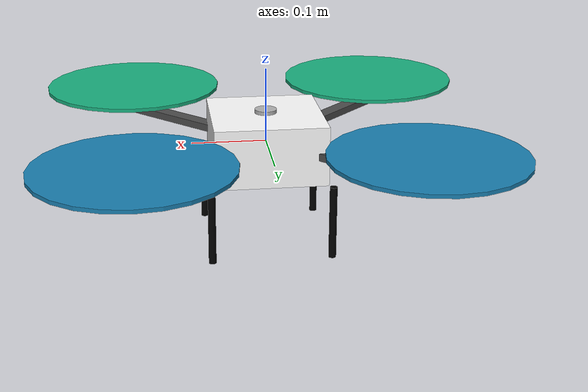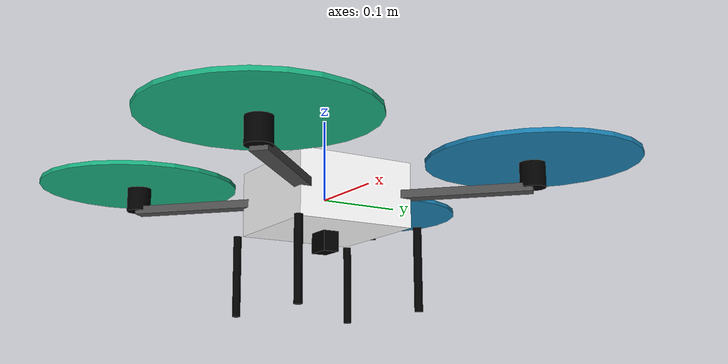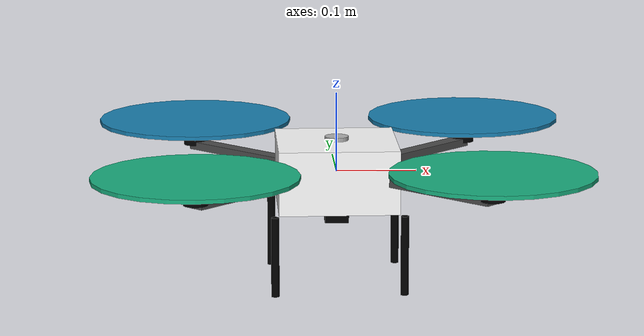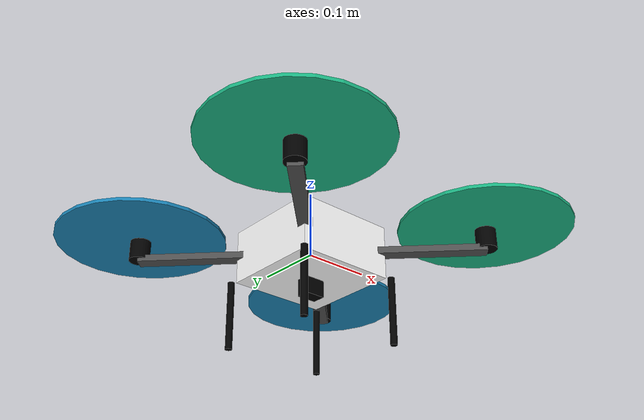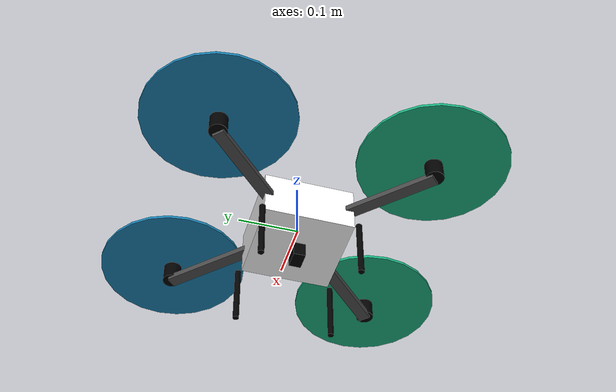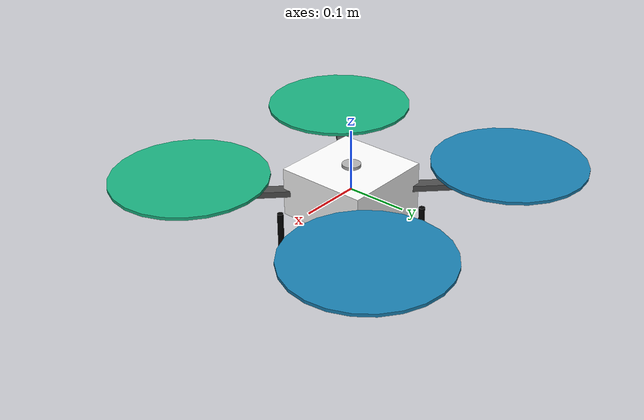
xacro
<?xml version="1.0"?>
<robot name="quadrotor" xmlns:xacro="http://www.ros.org/wiki/xacro">
  <!-- Include the URDF and Gazebo files -->
  <xacro:include filename="$(find quadrotor_description)/models/quadrotor/quadrotor.urdf.xacro" />
  <xacro:include filename="$(find quadrotor_description)/models/quadrotor/quadrotor.gazebo" />
</robot>

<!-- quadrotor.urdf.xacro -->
<robot name="quadrotor" xmlns:xacro="http://www.ros.org/wiki/xacro">
  <xacro:property name="pi" value="3.1415926535897931" />

  <!-- Main properties -->
  <xacro:property name="mass" value="1.477" />
  <xacro:property name="body_length" value="0.15" />
  <xacro:property name="body_width" value="0.15" />
  <xacro:property name="body_height" value="0.08" />
  <xacro:property name="arm_length" value="0.25" />
  <xacro:property name="arm_width" value="0.02" />
  <xacro:property name="arm_height" value="0.01" />
  <xacro:property name="prop_radius" value="0.125" />
  <xacro:property name="prop_height" value="0.005" />
  <xacro:property name="motor_radius" value="0.015" />
  <xacro:property name="motor_height" value="0.03" />

  <!-- Updated Colors for cleaner look -->
  <material name="black">
    <color rgba="0.0 0.0 0.0 1.0"/>
  </material>
  <material name="white">
    <color rgba="1.0 1.0 1.0 1.0"/>
  </material>
  <material name="light_gray">
    <color rgba="0.7 0.7 0.7 1.0"/>
  </material>
  <material name="dark_gray">
    <color rgba="0.3 0.3 0.3 1.0"/>
  </material>
  <material name="blue">
    <color rgba="0.1 0.5 0.69 1.0"/>
  </material>
  <material name="green">
    <color rgba="0.1 0.69 0.5 1.0"/>
  </material>

  <!-- Main quadrotor body (center) -->
  <link name="base_link">
    <inertial>
      <mass value="${mass}" />
      <origin xyz="0 0 0" />
      <inertia ixx="0.01152" ixy="0.0" ixz="0.0" iyy="0.01152" iyz="0.0" izz="0.0218" />
    </inertial>

    <visual>
      <origin xyz="0 0 0" rpy="0 0 0" />
      <geometry>
        <box size="${body_length} ${body_width} ${body_height}"/>
      </geometry>
      <material name="white"/>
    </visual>

    <collision>
      <origin xyz="0 0 0" rpy="0 0 0" />
      <geometry>
        <box size="${body_length} ${body_width} ${body_height}"/>
      </geometry>
    </collision>
  </link>

  <!-- Quadrotor arms -->
  <xacro:macro name="quadrotor_arm" params="name parent x y angle color">
    <link name="${name}_arm_link">
      <inertial>
        <mass value="0.05" />
        <origin xyz="${arm_length/2} 0 0" />
        <inertia ixx="0.0001" ixy="0.0" ixz="0.0" iyy="0.001" iyz="0.0" izz="0.001" />
      </inertial>

      <visual>
        <origin xyz="${arm_length/2} 0 0" rpy="0 0 0" />
        <geometry>
          <box size="${arm_length} ${arm_width} ${arm_height}"/>
        </geometry>
        <material name="dark_gray"/>
      </visual>

      <collision>
        <origin xyz="${arm_length/2} 0 0" rpy="0 0 0" />
        <geometry>
          <box size="${arm_length} ${arm_width} ${arm_height}"/>
        </geometry>
      </collision>
    </link>

    <joint name="${name}_arm_joint" type="fixed">
      <parent link="${parent}"/>
      <child link="${name}_arm_link"/>
      <origin xyz="0 0 0" rpy="0 0 ${angle}"/>
    </joint>

    <!-- Motor at the end of the arm -->
    <link name="${name}_motor_link">
      <inertial>
        <mass value="0.03" />
        <origin xyz="0 0 0" />
        <inertia ixx="0.0001" ixy="0.0" ixz="0.0" iyy="0.0001" iyz="0.0" izz="0.0001" />
      </inertial>

      <visual>
        <origin xyz="0 0 0" rpy="0 0 0" />
        <geometry>
          <cylinder radius="${motor_radius}" length="${motor_height}"/>
        </geometry>
        <material name="black"/>
      </visual>

      <collision>
        <origin xyz="0 0 0" rpy="0 0 0" />
        <geometry>
          <cylinder radius="${motor_radius}" length="${motor_height}"/>
        </geometry>
      </collision>
    </link>

    <joint name="${name}_motor_joint" type="fixed">
      <parent link="${name}_arm_link"/>
      <child link="${name}_motor_link"/>
      <origin xyz="${arm_length} 0 ${motor_height/2}" rpy="0 0 0"/>
    </joint>

    <!-- Propeller -->
    <link name="${name}_rotor_link">
      <inertial>
        <mass value="0.01" />
        <origin xyz="0 0 0" />
        <inertia ixx="0.0001" ixy="0.0" ixz="0.0" iyy="0.0001" iyz="0.0" izz="0.0001" />
      </inertial>

      <visual>
        <origin xyz="0 0 0" rpy="0 0 0" />
        <geometry>
          <cylinder radius="${prop_radius}" length="${prop_height}"/>
        </geometry>
        <material name="${color}"/>
      </visual>

      <collision>
        <origin xyz="0 0 0" rpy="0 0 0" />
        <geometry>
          <cylinder radius="${prop_radius}" length="${prop_height}"/>
        </geometry>
      </collision>
    </link>

    <joint name="${name}_rotor_joint" type="continuous">
      <parent link="${name}_motor_link"/>
      <child link="${name}_rotor_link"/>
      <origin xyz="0 0 ${motor_height/2 + prop_height/2}" rpy="0 0 0"/>
      <axis xyz="0 0 1"/>
    </joint>
  </xacro:macro>

  <!-- Create four arms with rotors -->
  <xacro:quadrotor_arm name="front_right" parent="base_link" x="1" y="-1" angle="${pi/4}" color="blue"/>
  <xacro:quadrotor_arm name="front_left" parent="base_link" x="1" y="1" angle="${3*pi/4}" color="blue"/>
  <xacro:quadrotor_arm name="back_left" parent="base_link" x="-1" y="1" angle="${-3*pi/4}" color="green"/>
  <xacro:quadrotor_arm name="back_right" parent="base_link" x="-1" y="-1" angle="${-pi/4}" color="green"/>

  <!-- Landing gear -->
  <xacro:macro name="landing_leg" params="name parent x y">
    <link name="${name}_leg_link">
      <inertial>
        <mass value="0.01" />
        <origin xyz="0 0 -0.05" />
        <inertia ixx="0.0001" ixy="0.0" ixz="0.0" iyy="0.0001" iyz="0.0" izz="0.0001" />
      </inertial>

      <visual>
        <origin xyz="0 0 -0.05" rpy="0 0 0" />
        <geometry>
          <cylinder radius="0.005" length="0.1"/>
        </geometry>
        <material name="black"/>
      </visual>

      <collision>
        <origin xyz="0 0 -0.05" rpy="0 0 0" />
        <geometry>
          <cylinder radius="0.005" length="0.1"/>
        </geometry>
      </collision>
    </link>

    <joint name="${name}_leg_joint" type="fixed">
      <parent link="${parent}"/>
      <child link="${name}_leg_link"/>
      <origin xyz="${x*0.08} ${y*0.08} -${body_height/2}" rpy="0 0 0"/>
    </joint>
  </xacro:macro>

  <!-- Create landing legs -->
  <xacro:landing_leg name="front_right" parent="base_link" x="1" y="-1"/>
  <xacro:landing_leg name="front_left" parent="base_link" x="1" y="1"/>
  <xacro:landing_leg name="back_left" parent="base_link" x="-1" y="1"/>
  <xacro:landing_leg name="back_right" parent="base_link" x="-1" y="-1"/>

  <!-- Bottom camera -->
  <link name="bottom_camera_link">
    <inertial>
      <mass value="0.01" />
      <origin xyz="0 0 0" />
      <inertia ixx="0.0001" ixy="0.0" ixz="0.0" iyy="0.0001" iyz="0.0" izz="0.0001" />
    </inertial>

    <visual>
      <origin xyz="0 0 0" rpy="0 0 0" />
      <geometry>
        <box size="0.03 0.03 0.02"/>
      </geometry>
      <material name="black"/>
    </visual>

    <collision>
      <origin xyz="0 0 0" rpy="0 0 0" />
      <geometry>
        <box size="0.03 0.03 0.02"/>
      </geometry>
    </collision>
  </link>

  <joint name="bottom_camera_joint" type="fixed">
    <parent link="base_link"/>
    <child link="bottom_camera_link"/>
    <origin xyz="0 0 -${body_height/2 + 0.01}" rpy="0 ${pi/2} ${pi/2}"/>
  </joint>

  <!-- IMU Link -->
  <link name="imu_link">
    <inertial>
      <mass value="0.005" />
      <origin xyz="0 0 0" />
      <inertia ixx="0.00001" ixy="0.0" ixz="0.0" iyy="0.00001" iyz="0.0" izz="0.00001" />
    </inertial>

    <visual>
      <origin xyz="0 0 0" rpy="0 0 0" />
      <geometry>
        <box size="0.015 0.015 0.005"/>
      </geometry>
      <material name="light_gray"/>
    </visual>
  </link>

  <joint name="imu_joint" type="fixed">
    <parent link="base_link"/>
    <child link="imu_link"/>
    <origin xyz="0 0 ${body_height/4}" rpy="0 0 0"/>
  </joint>

  <!-- GPS Link -->
  <link name="gps_link">
    <inertial>
      <mass value="0.005" />
      <origin xyz="0 0 0" />
      <inertia ixx="0.00001" ixy="0.0" ixz="0.0" iyy="0.00001" iyz="0.0" izz="0.00001" />
    </inertial>

    <visual>
      <origin xyz="0 0 0" rpy="0 0 0" />
      <geometry>
        <cylinder radius="0.015" length="0.005"/>
      </geometry>
      <material name="light_gray"/>
    </visual>
  </link>

  <joint name="gps_joint" type="fixed">
    <parent link="base_link"/>
    <child link="gps_link"/>
    <origin xyz="0 0 ${body_height/2 + 0.0025}" rpy="0 0 0"/>
  </joint>
</robot>
